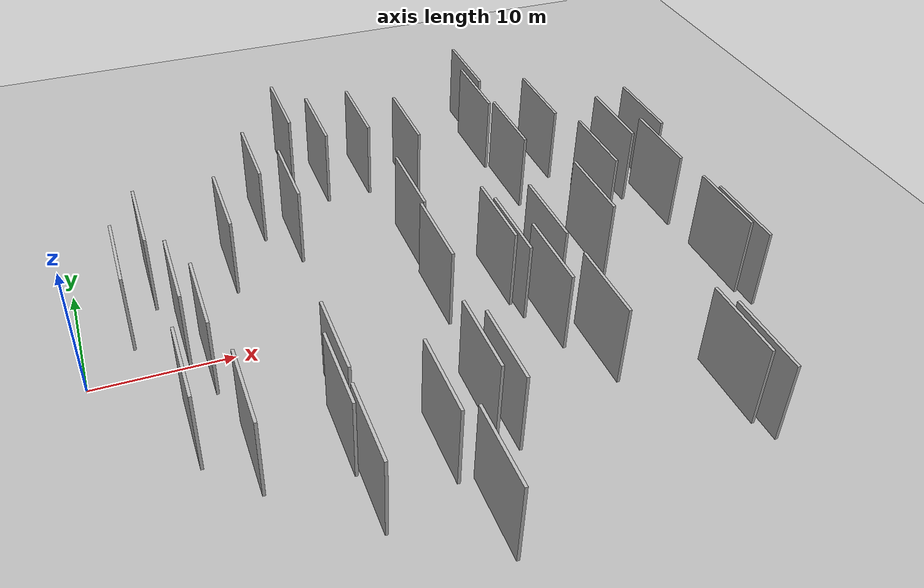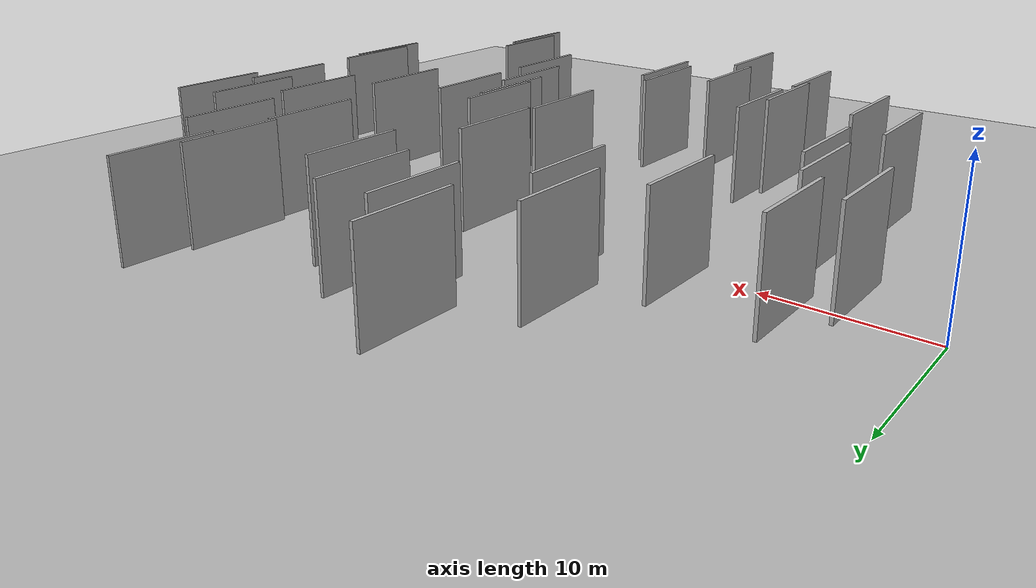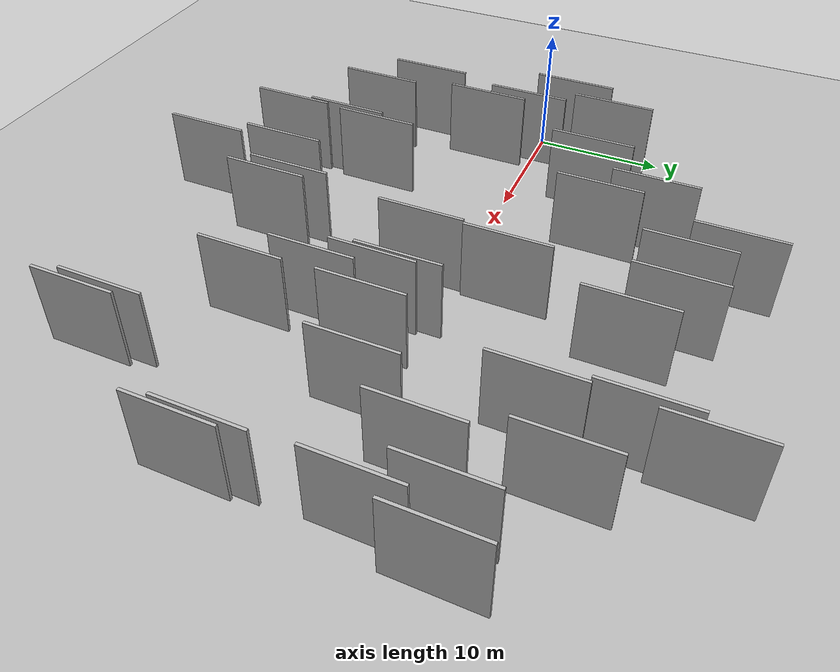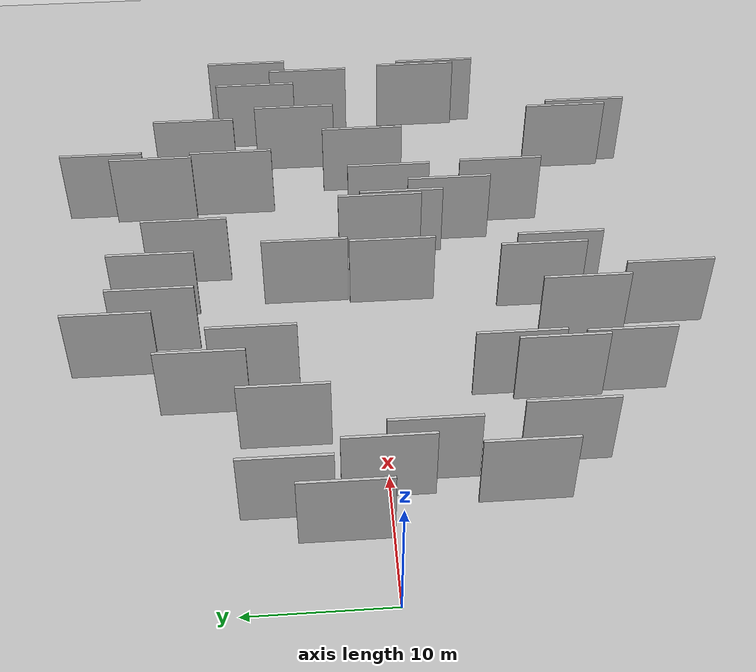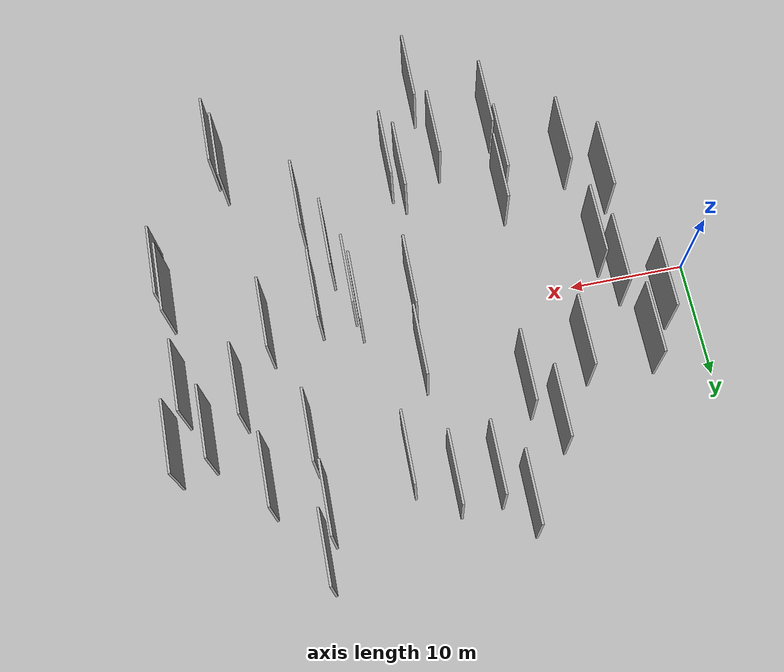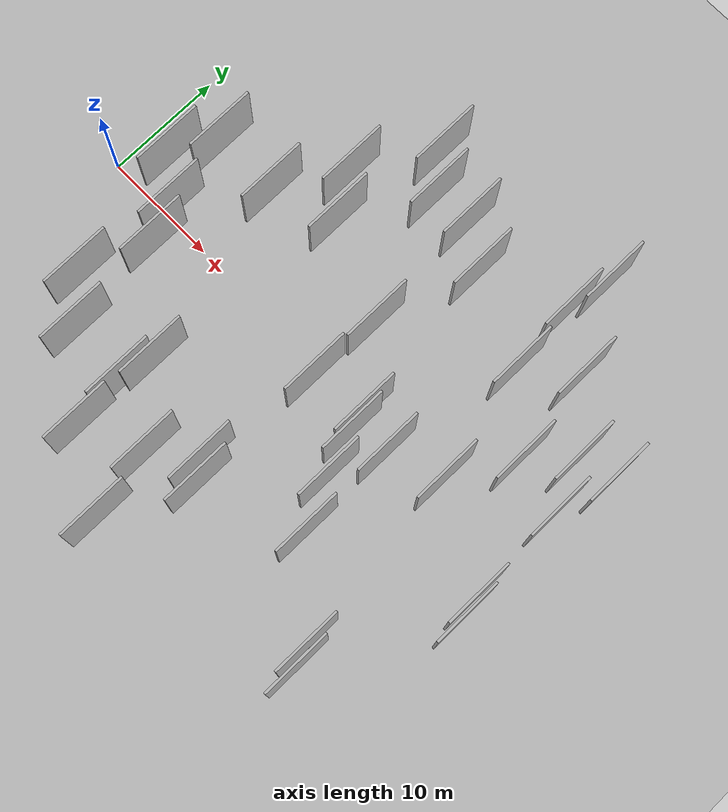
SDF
<?xml version="1.0" encoding="utf-8"?>

<sdf version="1.6">

   <world name="default">

      <gui fullscreen="0">

         <camera name="user_camera">

            <pose>-15 0 4.57585 0 0 0</pose>

            <view_controller>orbit</view_controller>

         </camera>

      </gui>

      <scene>

         <sky>

           <clouds>

             <speed>12</speed>

           </clouds>

         </sky>

         <ambient>0.4 0.4 0.4 1</ambient>

         <background>0.7 0.7 0.7 1</background>

         <shadows>1</shadows>

      </scene>

      <gravity>0 0 -9.8066</gravity>

      <magnetic_field>6e-06 2.3e-05 -4.2e-05</magnetic_field>

      <physics default="0" name="default_physics" type="ode">

         <ode>

            <solver>

               <type>quick</type>

               <iters>10</iters>

               <sor>1.0</sor>

               <use_dynamic_moi_rescaling>0</use_dynamic_moi_rescaling>

            </solver>

            <constraints>

               <cfm>0</cfm>

               <erp>0.2</erp>

               <contact_max_correcting_vel>100</contact_max_correcting_vel>

               <contact_surface_layer>0.001</contact_surface_layer>

            </constraints>

         </ode>

         <max_step_size>0.004</max_step_size>

         <real_time_factor>1</real_time_factor>

         <real_time_update_rate>250</real_time_update_rate>

      </physics>

      <light name="sun" type="directional">

         <cast_shadows>1</cast_shadows>

         <pose>0 0 10 0 0 0</pose>

         <diffuse>0.8 0.8 0.8 1</diffuse>

         <specular>0.2 0.2 0.2 1</specular>

         <attenuation>

            <range>1000</range>

            <constant>0.9</constant>

            <linear>0.01</linear>

            <quadratic>0.001</quadratic>

         </attenuation>

         <direction>-0.5 0.1 -0.9</direction>

      </light>

      <include>

         <name>ground_plane_1</name>

         <uri>model://HANNAS_ground_plane</uri>

         <pose>0 0 0  0 0 0</pose>

      </include>

      <include>

         <name>ground_plane_2</name>

         <uri>model://HANNAS_ground_plane</uri>

         <pose>100 0 0  0 0 0</pose>

      </include>

      <model name="HANNAS_wall_1">

         <static>1</static>

         <pose frame="">14.3937 11.9667 2.5 0.000000 0.000000 1.570796</pose>

         <link name="link">

            <pose frame="">0 0 3.00 0 0 0</pose>

            <collision name="collision">

               <geometry>

                  <box>

                     <size>6.00 0.2 6.00</size>

                  </box>

               </geometry>

               <max_contacts>10</max_contacts>

               <surface>

                  <contact>

                     <ode/>

                  </contact>

                  <bounce/>

                  <friction>

                     <torsional>

                        <ode/>

                     </torsional>

                     <ode/>

                  </friction>

               </surface>

            </collision>

            <visual name="visual">

               <cast_shadows>0</cast_shadows>

               <geometry>

                  <box>

                     <size>6.00 0.2 6.00</size>

                  </box>

               </geometry>

               <material>

                  <script>

                     <uri>model://HANNAS_wall/materials/scripts</uri>

                     <uri>model://HANNAS_wall/materials/textures</uri>

                     <name>vrc/HANNAS_wall</name>

                  </script>

               </material>

            </visual>

            <self_collide>0</self_collide>

            <enable_wind>0</enable_wind>

            <kinematic>0</kinematic>

         </link>

      </model>

      <model name="HANNAS_wall_2">

         <static>1</static>

         <pose frame="">16.3919 8.6113 2.5 0.000000 0.000000 1.570796</pose>

         <link name="link">

            <pose frame="">0 0 3.00 0 0 0</pose>

            <collision name="collision">

               <geometry>

                  <box>

                     <size>6.00 0.2 6.00</size>

                  </box>

               </geometry>

               <max_contacts>10</max_contacts>

               <surface>

                  <contact>

                     <ode/>

                  </contact>

                  <bounce/>

                  <friction>

                     <torsional>

                        <ode/>

                     </torsional>

                     <ode/>

                  </friction>

               </surface>

            </collision>

            <visual name="visual">

               <cast_shadows>0</cast_shadows>

               <geometry>

                  <box>

                     <size>6.00 0.2 6.00</size>

                  </box>

               </geometry>

               <material>

                  <script>

                     <uri>model://HANNAS_wall/materials/scripts</uri>

                     <uri>model://HANNAS_wall/materials/textures</uri>

                     <name>vrc/HANNAS_wall</name>

                  </script>

               </material>

            </visual>

            <self_collide>0</self_collide>

            <enable_wind>0</enable_wind>

            <kinematic>0</kinematic>

         </link>

      </model>

      <model name="HANNAS_wall_3">

         <static>1</static>

         <pose frame="">42.2701 8.1424 2.5 0.000000 0.000000 1.570796</pose>

         <link name="link">

            <pose frame="">0 0 3.00 0 0 0</pose>

            <collision name="collision">

               <geometry>

                  <box>

                     <size>6.00 0.2 6.00</size>

                  </box>

               </geometry>

               <max_contacts>10</max_contacts>

               <surface>

                  <contact>

                     <ode/>

                  </contact>

                  <bounce/>

                  <friction>

                     <torsional>

                        <ode/>

                     </torsional>

                     <ode/>

                  </friction>

               </surface>

            </collision>

            <visual name="visual">

               <cast_shadows>0</cast_shadows>

               <geometry>

                  <box>

                     <size>6.00 0.2 6.00</size>

                  </box>

               </geometry>

               <material>

                  <script>

                     <uri>model://HANNAS_wall/materials/scripts</uri>

                     <uri>model://HANNAS_wall/materials/textures</uri>

                     <name>vrc/HANNAS_wall</name>

                  </script>

               </material>

            </visual>

            <self_collide>0</self_collide>

            <enable_wind>0</enable_wind>

            <kinematic>0</kinematic>

         </link>

      </model>

      <model name="HANNAS_wall_4">

         <static>1</static>

         <pose frame="">6.7363 0.3135 2.5 0.000000 0.000000 1.570796</pose>

         <link name="link">

            <pose frame="">0 0 3.00 0 0 0</pose>

            <collision name="collision">

               <geometry>

                  <box>

                     <size>6.00 0.2 6.00</size>

                  </box>

               </geometry>

               <max_contacts>10</max_contacts>

               <surface>

                  <contact>

                     <ode/>

                  </contact>

                  <bounce/>

                  <friction>

                     <torsional>

                        <ode/>

                     </torsional>

                     <ode/>

                  </friction>

               </surface>

            </collision>

            <visual name="visual">

               <cast_shadows>0</cast_shadows>

               <geometry>

                  <box>

                     <size>6.00 0.2 6.00</size>

                  </box>

               </geometry>

               <material>

                  <script>

                     <uri>model://HANNAS_wall/materials/scripts</uri>

                     <uri>model://HANNAS_wall/materials/textures</uri>

                     <name>vrc/HANNAS_wall</name>

                  </script>

               </material>

            </visual>

            <self_collide>0</self_collide>

            <enable_wind>0</enable_wind>

            <kinematic>0</kinematic>

         </link>

      </model>

      <model name="HANNAS_wall_5">

         <static>1</static>

         <pose frame="">36.3758 0.1300 2.5 0.000000 0.000000 1.570796</pose>

         <link name="link">

            <pose frame="">0 0 3.00 0 0 0</pose>

            <collision name="collision">

               <geometry>

                  <box>

                     <size>6.00 0.2 6.00</size>

                  </box>

               </geometry>

               <max_contacts>10</max_contacts>

               <surface>

                  <contact>

                     <ode/>

                  </contact>

                  <bounce/>

                  <friction>

                     <torsional>

                        <ode/>

                     </torsional>

                     <ode/>

                  </friction>

               </surface>

            </collision>

            <visual name="visual">

               <cast_shadows>0</cast_shadows>

               <geometry>

                  <box>

                     <size>6.00 0.2 6.00</size>

                  </box>

               </geometry>

               <material>

                  <script>

                     <uri>model://HANNAS_wall/materials/scripts</uri>

                     <uri>model://HANNAS_wall/materials/textures</uri>

                     <name>vrc/HANNAS_wall</name>

                  </script>

               </material>

            </visual>

            <self_collide>0</self_collide>

            <enable_wind>0</enable_wind>

            <kinematic>0</kinematic>

         </link>

      </model>

      <model name="HANNAS_wall_6">

         <static>1</static>

         <pose frame="">5.5170 6.7198 2.5 0.000000 0.000000 1.570796</pose>

         <link name="link">

            <pose frame="">0 0 3.00 0 0 0</pose>

            <collision name="collision">

               <geometry>

                  <box>

                     <size>6.00 0.2 6.00</size>

                  </box>

               </geometry>

               <max_contacts>10</max_contacts>

               <surface>

                  <contact>

                     <ode/>

                  </contact>

                  <bounce/>

                  <friction>

                     <torsional>

                        <ode/>

                     </torsional>

                     <ode/>

                  </friction>

               </surface>

            </collision>

            <visual name="visual">

               <cast_shadows>0</cast_shadows>

               <geometry>

                  <box>

                     <size>6.00 0.2 6.00</size>

                  </box>

               </geometry>

               <material>

                  <script>

                     <uri>model://HANNAS_wall/materials/scripts</uri>

                     <uri>model://HANNAS_wall/materials/textures</uri>

                     <name>vrc/HANNAS_wall</name>

                  </script>

               </material>

            </visual>

            <self_collide>0</self_collide>

            <enable_wind>0</enable_wind>

            <kinematic>0</kinematic>

         </link>

      </model>

      <model name="HANNAS_wall_7">

         <static>1</static>

         <pose frame="">20.6162 -19.9581 2.5 0.000000 0.000000 1.570796</pose>

         <link name="link">

            <pose frame="">0 0 3.00 0 0 0</pose>

            <collision name="collision">

               <geometry>

                  <box>

                     <size>6.00 0.2 6.00</size>

                  </box>

               </geometry>

               <max_contacts>10</max_contacts>

               <surface>

                  <contact>

                     <ode/>

                  </contact>

                  <bounce/>

                  <friction>

                     <torsional>

                        <ode/>

                     </torsional>

                     <ode/>

                  </friction>

               </surface>

            </collision>

            <visual name="visual">

               <cast_shadows>0</cast_shadows>

               <geometry>

                  <box>

                     <size>6.00 0.2 6.00</size>

                  </box>

               </geometry>

               <material>

                  <script>

                     <uri>model://HANNAS_wall/materials/scripts</uri>

                     <uri>model://HANNAS_wall/materials/textures</uri>

                     <name>vrc/HANNAS_wall</name>

                  </script>

               </material>

            </visual>

            <self_collide>0</self_collide>

            <enable_wind>0</enable_wind>

            <kinematic>0</kinematic>

         </link>

      </model>

      <model name="HANNAS_wall_8">

         <static>1</static>

         <pose frame="">31.9940 -1.5447 2.5 0.000000 0.000000 1.570796</pose>

         <link name="link">

            <pose frame="">0 0 3.00 0 0 0</pose>

            <collision name="collision">

               <geometry>

                  <box>

                     <size>6.00 0.2 6.00</size>

                  </box>

               </geometry>

               <max_contacts>10</max_contacts>

               <surface>

                  <contact>

                     <ode/>

                  </contact>

                  <bounce/>

                  <friction>

                     <torsional>

                        <ode/>

                     </torsional>

                     <ode/>

                  </friction>

               </surface>

            </collision>

            <visual name="visual">

               <cast_shadows>0</cast_shadows>

               <geometry>

                  <box>

                     <size>6.00 0.2 6.00</size>

                  </box>

               </geometry>

               <material>

                  <script>

                     <uri>model://HANNAS_wall/materials/scripts</uri>

                     <uri>model://HANNAS_wall/materials/textures</uri>

                     <name>vrc/HANNAS_wall</name>

                  </script>

               </material>

            </visual>

            <self_collide>0</self_collide>

            <enable_wind>0</enable_wind>

            <kinematic>0</kinematic>

         </link>

      </model>

      <model name="HANNAS_wall_9">

         <static>1</static>

         <pose frame="">44.1794 -4.5368 2.5 0.000000 0.000000 1.570796</pose>

         <link name="link">

            <pose frame="">0 0 3.00 0 0 0</pose>

            <collision name="collision">

               <geometry>

                  <box>

                     <size>6.00 0.2 6.00</size>

                  </box>

               </geometry>

               <max_contacts>10</max_contacts>

               <surface>

                  <contact>

                     <ode/>

                  </contact>

                  <bounce/>

                  <friction>

                     <torsional>

                        <ode/>

                     </torsional>

                     <ode/>

                  </friction>

               </surface>

            </collision>

            <visual name="visual">

               <cast_shadows>0</cast_shadows>

               <geometry>

                  <box>

                     <size>6.00 0.2 6.00</size>

                  </box>

               </geometry>

               <material>

                  <script>

                     <uri>model://HANNAS_wall/materials/scripts</uri>

                     <uri>model://HANNAS_wall/materials/textures</uri>

                     <name>vrc/HANNAS_wall</name>

                  </script>

               </material>

            </visual>

            <self_collide>0</self_collide>

            <enable_wind>0</enable_wind>

            <kinematic>0</kinematic>

         </link>

      </model>

      <model name="HANNAS_wall_10">

         <static>1</static>

         <pose frame="">14.1876 -11.6768 2.5 0.000000 0.000000 1.570796</pose>

         <link name="link">

            <pose frame="">0 0 3.00 0 0 0</pose>

            <collision name="collision">

               <geometry>

                  <box>

                     <size>6.00 0.2 6.00</size>

                  </box>

               </geometry>

               <max_contacts>10</max_contacts>

               <surface>

                  <contact>

                     <ode/>

                  </contact>

                  <bounce/>

                  <friction>

                     <torsional>

                        <ode/>

                     </torsional>

                     <ode/>

                  </friction>

               </surface>

            </collision>

            <visual name="visual">

               <cast_shadows>0</cast_shadows>

               <geometry>

                  <box>

                     <size>6.00 0.2 6.00</size>

                  </box>

               </geometry>

               <material>

                  <script>

                     <uri>model://HANNAS_wall/materials/scripts</uri>

                     <uri>model://HANNAS_wall/materials/textures</uri>

                     <name>vrc/HANNAS_wall</name>

                  </script>

               </material>

            </visual>

            <self_collide>0</self_collide>

            <enable_wind>0</enable_wind>

            <kinematic>0</kinematic>

         </link>

      </model>

      <model name="HANNAS_wall_11">

         <static>1</static>

         <pose frame="">30.2900 -5.8264 2.5 0.000000 0.000000 1.570796</pose>

         <link name="link">

            <pose frame="">0 0 3.00 0 0 0</pose>

            <collision name="collision">

               <geometry>

                  <box>

                     <size>6.00 0.2 6.00</size>

                  </box>

               </geometry>

               <max_contacts>10</max_contacts>

               <surface>

                  <contact>

                     <ode/>

                  </contact>

                  <bounce/>

                  <friction>

                     <torsional>

                        <ode/>

                     </torsional>

                     <ode/>

                  </friction>

               </surface>

            </collision>

            <visual name="visual">

               <cast_shadows>0</cast_shadows>

               <geometry>

                  <box>

                     <size>6.00 0.2 6.00</size>

                  </box>

               </geometry>

               <material>

                  <script>

                     <uri>model://HANNAS_wall/materials/scripts</uri>

                     <uri>model://HANNAS_wall/materials/textures</uri>

                     <name>vrc/HANNAS_wall</name>

                  </script>

               </material>

            </visual>

            <self_collide>0</self_collide>

            <enable_wind>0</enable_wind>

            <kinematic>0</kinematic>

         </link>

      </model>

      <model name="HANNAS_wall_12">

         <static>1</static>

         <pose frame="">8.8209 -11.3309 2.5 0.000000 0.000000 1.570796</pose>

         <link name="link">

            <pose frame="">0 0 3.00 0 0 0</pose>

            <collision name="collision">

               <geometry>

                  <box>

                     <size>6.00 0.2 6.00</size>

                  </box>

               </geometry>

               <max_contacts>10</max_contacts>

               <surface>

                  <contact>

                     <ode/>

                  </contact>

                  <bounce/>

                  <friction>

                     <torsional>

                        <ode/>

                     </torsional>

                     <ode/>

                  </friction>

               </surface>

            </collision>

            <visual name="visual">

               <cast_shadows>0</cast_shadows>

               <geometry>

                  <box>

                     <size>6.00 0.2 6.00</size>

                  </box>

               </geometry>

               <material>

                  <script>

                     <uri>model://HANNAS_wall/materials/scripts</uri>

                     <uri>model://HANNAS_wall/materials/textures</uri>

                     <name>vrc/HANNAS_wall</name>

                  </script>

               </material>

            </visual>

            <self_collide>0</self_collide>

            <enable_wind>0</enable_wind>

            <kinematic>0</kinematic>

         </link>

      </model>

      <model name="HANNAS_wall_13">

         <static>1</static>

         <pose frame="">29.0620 -2.2479 2.5 0.000000 0.000000 1.570796</pose>

         <link name="link">

            <pose frame="">0 0 3.00 0 0 0</pose>

            <collision name="collision">

               <geometry>

                  <box>

                     <size>6.00 0.2 6.00</size>

                  </box>

               </geometry>

               <max_contacts>10</max_contacts>

               <surface>

                  <contact>

                     <ode/>

                  </contact>

                  <bounce/>

                  <friction>

                     <torsional>

                        <ode/>

                     </torsional>

                     <ode/>

                  </friction>

               </surface>

            </collision>

            <visual name="visual">

               <cast_shadows>0</cast_shadows>

               <geometry>

                  <box>

                     <size>6.00 0.2 6.00</size>

                  </box>

               </geometry>

               <material>

                  <script>

                     <uri>model://HANNAS_wall/materials/scripts</uri>

                     <uri>model://HANNAS_wall/materials/textures</uri>

                     <name>vrc/HANNAS_wall</name>

                  </script>

               </material>

            </visual>

            <self_collide>0</self_collide>

            <enable_wind>0</enable_wind>

            <kinematic>0</kinematic>

         </link>

      </model>

      <model name="HANNAS_wall_14">

         <static>1</static>

         <pose frame="">23.6584 15.4798 2.5 0.000000 0.000000 1.570796</pose>

         <link name="link">

            <pose frame="">0 0 3.00 0 0 0</pose>

            <collision name="collision">

               <geometry>

                  <box>

                     <size>6.00 0.2 6.00</size>

                  </box>

               </geometry>

               <max_contacts>10</max_contacts>

               <surface>

                  <contact>

                     <ode/>

                  </contact>

                  <bounce/>

                  <friction>

                     <torsional>

                        <ode/>

                     </torsional>

                     <ode/>

                  </friction>

               </surface>

            </collision>

            <visual name="visual">

               <cast_shadows>0</cast_shadows>

               <geometry>

                  <box>

                     <size>6.00 0.2 6.00</size>

                  </box>

               </geometry>

               <material>

                  <script>

                     <uri>model://HANNAS_wall/materials/scripts</uri>

                     <uri>model://HANNAS_wall/materials/textures</uri>

                     <name>vrc/HANNAS_wall</name>

                  </script>

               </material>

            </visual>

            <self_collide>0</self_collide>

            <enable_wind>0</enable_wind>

            <kinematic>0</kinematic>

         </link>

      </model>

      <model name="HANNAS_wall_15">

         <static>1</static>

         <pose frame="">3.5418 3.1397 2.5 0.000000 0.000000 1.570796</pose>

         <link name="link">

            <pose frame="">0 0 3.00 0 0 0</pose>

            <collision name="collision">

               <geometry>

                  <box>

                     <size>6.00 0.2 6.00</size>

                  </box>

               </geometry>

               <max_contacts>10</max_contacts>

               <surface>

                  <contact>

                     <ode/>

                  </contact>

                  <bounce/>

                  <friction>

                     <torsional>

                        <ode/>

                     </torsional>

                     <ode/>

                  </friction>

               </surface>

            </collision>

            <visual name="visual">

               <cast_shadows>0</cast_shadows>

               <geometry>

                  <box>

                     <size>6.00 0.2 6.00</size>

                  </box>

               </geometry>

               <material>

                  <script>

                     <uri>model://HANNAS_wall/materials/scripts</uri>

                     <uri>model://HANNAS_wall/materials/textures</uri>

                     <name>vrc/HANNAS_wall</name>

                  </script>

               </material>

            </visual>

            <self_collide>0</self_collide>

            <enable_wind>0</enable_wind>

            <kinematic>0</kinematic>

         </link>

      </model>

      <model name="HANNAS_wall_16">

         <static>1</static>

         <pose frame="">5.8569 -8.3021 2.5 0.000000 0.000000 1.570796</pose>

         <link name="link">

            <pose frame="">0 0 3.00 0 0 0</pose>

            <collision name="collision">

               <geometry>

                  <box>

                     <size>6.00 0.2 6.00</size>

                  </box>

               </geometry>

               <max_contacts>10</max_contacts>

               <surface>

                  <contact>

                     <ode/>

                  </contact>

                  <bounce/>

                  <friction>

                     <torsional>

                        <ode/>

                     </torsional>

                     <ode/>

                  </friction>

               </surface>

            </collision>

            <visual name="visual">

               <cast_shadows>0</cast_shadows>

               <geometry>

                  <box>

                     <size>6.00 0.2 6.00</size>

                  </box>

               </geometry>

               <material>

                  <script>

                     <uri>model://HANNAS_wall/materials/scripts</uri>

                     <uri>model://HANNAS_wall/materials/textures</uri>

                     <name>vrc/HANNAS_wall</name>

                  </script>

               </material>

            </visual>

            <self_collide>0</self_collide>

            <enable_wind>0</enable_wind>

            <kinematic>0</kinematic>

         </link>

      </model>

      <model name="HANNAS_wall_17">

         <static>1</static>

         <pose frame="">23.9414 -12.9512 2.5 0.000000 0.000000 1.570796</pose>

         <link name="link">

            <pose frame="">0 0 3.00 0 0 0</pose>

            <collision name="collision">

               <geometry>

                  <box>

                     <size>6.00 0.2 6.00</size>

                  </box>

               </geometry>

               <max_contacts>10</max_contacts>

               <surface>

                  <contact>

                     <ode/>

                  </contact>

                  <bounce/>

                  <friction>

                     <torsional>

                        <ode/>

                     </torsional>

                     <ode/>

                  </friction>

               </surface>

            </collision>

            <visual name="visual">

               <cast_shadows>0</cast_shadows>

               <geometry>

                  <box>

                     <size>6.00 0.2 6.00</size>

                  </box>

               </geometry>

               <material>

                  <script>

                     <uri>model://HANNAS_wall/materials/scripts</uri>

                     <uri>model://HANNAS_wall/materials/textures</uri>

                     <name>vrc/HANNAS_wall</name>

                  </script>

               </material>

            </visual>

            <self_collide>0</self_collide>

            <enable_wind>0</enable_wind>

            <kinematic>0</kinematic>

         </link>

      </model>

      <model name="HANNAS_wall_18">

         <static>1</static>

         <pose frame="">24.3303 4.8738 2.5 0.000000 0.000000 1.570796</pose>

         <link name="link">

            <pose frame="">0 0 3.00 0 0 0</pose>

            <collision name="collision">

               <geometry>

                  <box>

                     <size>6.00 0.2 6.00</size>

                  </box>

               </geometry>

               <max_contacts>10</max_contacts>

               <surface>

                  <contact>

                     <ode/>

                  </contact>

                  <bounce/>

                  <friction>

                     <torsional>

                        <ode/>

                     </torsional>

                     <ode/>

                  </friction>

               </surface>

            </collision>

            <visual name="visual">

               <cast_shadows>0</cast_shadows>

               <geometry>

                  <box>

                     <size>6.00 0.2 6.00</size>

                  </box>

               </geometry>

               <material>

                  <script>

                     <uri>model://HANNAS_wall/materials/scripts</uri>

                     <uri>model://HANNAS_wall/materials/textures</uri>

                     <name>vrc/HANNAS_wall</name>

                  </script>

               </material>

            </visual>

            <self_collide>0</self_collide>

            <enable_wind>0</enable_wind>

            <kinematic>0</kinematic>

         </link>

      </model>

      <model name="HANNAS_wall_19">

         <static>1</static>

         <pose frame="">34.4750 19.5142 2.5 0.000000 0.000000 1.570796</pose>

         <link name="link">

            <pose frame="">0 0 3.00 0 0 0</pose>

            <collision name="collision">

               <geometry>

                  <box>

                     <size>6.00 0.2 6.00</size>

                  </box>

               </geometry>

               <max_contacts>10</max_contacts>

               <surface>

                  <contact>

                     <ode/>

                  </contact>

                  <bounce/>

                  <friction>

                     <torsional>

                        <ode/>

                     </torsional>

                     <ode/>

                  </friction>

               </surface>

            </collision>

            <visual name="visual">

               <cast_shadows>0</cast_shadows>

               <geometry>

                  <box>

                     <size>6.00 0.2 6.00</size>

                  </box>

               </geometry>

               <material>

                  <script>

                     <uri>model://HANNAS_wall/materials/scripts</uri>

                     <uri>model://HANNAS_wall/materials/textures</uri>

                     <name>vrc/HANNAS_wall</name>

                  </script>

               </material>

            </visual>

            <self_collide>0</self_collide>

            <enable_wind>0</enable_wind>

            <kinematic>0</kinematic>

         </link>

      </model>

      <model name="HANNAS_wall_20">

         <static>1</static>

         <pose frame="">20.2878 15.3825 2.5 0.000000 0.000000 1.570796</pose>

         <link name="link">

            <pose frame="">0 0 3.00 0 0 0</pose>

            <collision name="collision">

               <geometry>

                  <box>

                     <size>6.00 0.2 6.00</size>

                  </box>

               </geometry>

               <max_contacts>10</max_contacts>

               <surface>

                  <contact>

                     <ode/>

                  </contact>

                  <bounce/>

                  <friction>

                     <torsional>

                        <ode/>

                     </torsional>

                     <ode/>

                  </friction>

               </surface>

            </collision>

            <visual name="visual">

               <cast_shadows>0</cast_shadows>

               <geometry>

                  <box>

                     <size>6.00 0.2 6.00</size>

                  </box>

               </geometry>

               <material>

                  <script>

                     <uri>model://HANNAS_wall/materials/scripts</uri>

                     <uri>model://HANNAS_wall/materials/textures</uri>

                     <name>vrc/HANNAS_wall</name>

                  </script>

               </material>

            </visual>

            <self_collide>0</self_collide>

            <enable_wind>0</enable_wind>

            <kinematic>0</kinematic>

         </link>

      </model>

      <model name="HANNAS_wall_21">

         <static>1</static>

         <pose frame="">11.1856 6.6719 2.5 0.000000 0.000000 1.570796</pose>

         <link name="link">

            <pose frame="">0 0 3.00 0 0 0</pose>

            <collision name="collision">

               <geometry>

                  <box>

                     <size>6.00 0.2 6.00</size>

                  </box>

               </geometry>

               <max_contacts>10</max_contacts>

               <surface>

                  <contact>

                     <ode/>

                  </contact>

                  <bounce/>

                  <friction>

                     <torsional>

                        <ode/>

                     </torsional>

                     <ode/>

                  </friction>

               </surface>

            </collision>

            <visual name="visual">

               <cast_shadows>0</cast_shadows>

               <geometry>

                  <box>

                     <size>6.00 0.2 6.00</size>

                  </box>

               </geometry>

               <material>

                  <script>

                     <uri>model://HANNAS_wall/materials/scripts</uri>

                     <uri>model://HANNAS_wall/materials/textures</uri>

                     <name>vrc/HANNAS_wall</name>

                  </script>

               </material>

            </visual>

            <self_collide>0</self_collide>

            <enable_wind>0</enable_wind>

            <kinematic>0</kinematic>

         </link>

      </model>

      <model name="HANNAS_wall_22">

         <static>1</static>

         <pose frame="">24.0437 -1.2047 2.5 0.000000 0.000000 1.570796</pose>

         <link name="link">

            <pose frame="">0 0 3.00 0 0 0</pose>

            <collision name="collision">

               <geometry>

                  <box>

                     <size>6.00 0.2 6.00</size>

                  </box>

               </geometry>

               <max_contacts>10</max_contacts>

               <surface>

                  <contact>

                     <ode/>

                  </contact>

                  <bounce/>

                  <friction>

                     <torsional>

                        <ode/>

                     </torsional>

                     <ode/>

                  </friction>

               </surface>

            </collision>

            <visual name="visual">

               <cast_shadows>0</cast_shadows>

               <geometry>

                  <box>

                     <size>6.00 0.2 6.00</size>

                  </box>

               </geometry>

               <material>

                  <script>

                     <uri>model://HANNAS_wall/materials/scripts</uri>

                     <uri>model://HANNAS_wall/materials/textures</uri>

                     <name>vrc/HANNAS_wall</name>

                  </script>

               </material>

            </visual>

            <self_collide>0</self_collide>

            <enable_wind>0</enable_wind>

            <kinematic>0</kinematic>

         </link>

      </model>

      <model name="HANNAS_wall_23">

         <static>1</static>

         <pose frame="">19.5489 -14.1023 2.5 0.000000 0.000000 1.570796</pose>

         <link name="link">

            <pose frame="">0 0 3.00 0 0 0</pose>

            <collision name="collision">

               <geometry>

                  <box>

                     <size>6.00 0.2 6.00</size>

                  </box>

               </geometry>

               <max_contacts>10</max_contacts>

               <surface>

                  <contact>

                     <ode/>

                  </contact>

                  <bounce/>

                  <friction>

                     <torsional>

                        <ode/>

                     </torsional>

                     <ode/>

                  </friction>

               </surface>

            </collision>

            <visual name="visual">

               <cast_shadows>0</cast_shadows>

               <geometry>

                  <box>

                     <size>6.00 0.2 6.00</size>

                  </box>

               </geometry>

               <material>

                  <script>

                     <uri>model://HANNAS_wall/materials/scripts</uri>

                     <uri>model://HANNAS_wall/materials/textures</uri>

                     <name>vrc/HANNAS_wall</name>

                  </script>

               </material>

            </visual>

            <self_collide>0</self_collide>

            <enable_wind>0</enable_wind>

            <kinematic>0</kinematic>

         </link>

      </model>

      <model name="HANNAS_wall_24">

         <static>1</static>

         <pose frame="">38.1406 -15.5876 2.5 0.000000 0.000000 1.570796</pose>

         <link name="link">

            <pose frame="">0 0 3.00 0 0 0</pose>

            <collision name="collision">

               <geometry>

                  <box>

                     <size>6.00 0.2 6.00</size>

                  </box>

               </geometry>

               <max_contacts>10</max_contacts>

               <surface>

                  <contact>

                     <ode/>

                  </contact>

                  <bounce/>

                  <friction>

                     <torsional>

                        <ode/>

                     </torsional>

                     <ode/>

                  </friction>

               </surface>

            </collision>

            <visual name="visual">

               <cast_shadows>0</cast_shadows>

               <geometry>

                  <box>

                     <size>6.00 0.2 6.00</size>

                  </box>

               </geometry>

               <material>

                  <script>

                     <uri>model://HANNAS_wall/materials/scripts</uri>

                     <uri>model://HANNAS_wall/materials/textures</uri>

                     <name>vrc/HANNAS_wall</name>

                  </script>

               </material>

            </visual>

            <self_collide>0</self_collide>

            <enable_wind>0</enable_wind>

            <kinematic>0</kinematic>

         </link>

      </model>

      <model name="HANNAS_wall_25">

         <static>1</static>

         <pose frame="">38.0680 12.8161 2.5 0.000000 0.000000 1.570796</pose>

         <link name="link">

            <pose frame="">0 0 3.00 0 0 0</pose>

            <collision name="collision">

               <geometry>

                  <box>

                     <size>6.00 0.2 6.00</size>

                  </box>

               </geometry>

               <max_contacts>10</max_contacts>

               <surface>

                  <contact>

                     <ode/>

                  </contact>

                  <bounce/>

                  <friction>

                     <torsional>

                        <ode/>

                     </torsional>

                     <ode/>

                  </friction>

               </surface>

            </collision>

            <visual name="visual">

               <cast_shadows>0</cast_shadows>

               <geometry>

                  <box>

                     <size>6.00 0.2 6.00</size>

                  </box>

               </geometry>

               <material>

                  <script>

                     <uri>model://HANNAS_wall/materials/scripts</uri>

                     <uri>model://HANNAS_wall/materials/textures</uri>

                     <name>vrc/HANNAS_wall</name>

                  </script>

               </material>

            </visual>

            <self_collide>0</self_collide>

            <enable_wind>0</enable_wind>

            <kinematic>0</kinematic>

         </link>

      </model>

      <model name="HANNAS_wall_26">

         <static>1</static>

         <pose frame="">14.5330 -16.1278 2.5 0.000000 0.000000 1.570796</pose>

         <link name="link">

            <pose frame="">0 0 3.00 0 0 0</pose>

            <collision name="collision">

               <geometry>

                  <box>

                     <size>6.00 0.2 6.00</size>

                  </box>

               </geometry>

               <max_contacts>10</max_contacts>

               <surface>

                  <contact>

                     <ode/>

                  </contact>

                  <bounce/>

                  <friction>

                     <torsional>

                        <ode/>

                     </torsional>

                     <ode/>

                  </friction>

               </surface>

            </collision>

            <visual name="visual">

               <cast_shadows>0</cast_shadows>

               <geometry>

                  <box>

                     <size>6.00 0.2 6.00</size>

                  </box>

               </geometry>

               <material>

                  <script>

                     <uri>model://HANNAS_wall/materials/scripts</uri>

                     <uri>model://HANNAS_wall/materials/textures</uri>

                     <name>vrc/HANNAS_wall</name>

                  </script>

               </material>

            </visual>

            <self_collide>0</self_collide>

            <enable_wind>0</enable_wind>

            <kinematic>0</kinematic>

         </link>

      </model>

      <model name="HANNAS_wall_27">

         <static>1</static>

         <pose frame="">26.9502 13.2616 2.5 0.000000 0.000000 1.570796</pose>

         <link name="link">

            <pose frame="">0 0 3.00 0 0 0</pose>

            <collision name="collision">

               <geometry>

                  <box>

                     <size>6.00 0.2 6.00</size>

                  </box>

               </geometry>

               <max_contacts>10</max_contacts>

               <surface>

                  <contact>

                     <ode/>

                  </contact>

                  <bounce/>

                  <friction>

                     <torsional>

                        <ode/>

                     </torsional>

                     <ode/>

                  </friction>

               </surface>

            </collision>

            <visual name="visual">

               <cast_shadows>0</cast_shadows>

               <geometry>

                  <box>

                     <size>6.00 0.2 6.00</size>

                  </box>

               </geometry>

               <material>

                  <script>

                     <uri>model://HANNAS_wall/materials/scripts</uri>

                     <uri>model://HANNAS_wall/materials/textures</uri>

                     <name>vrc/HANNAS_wall</name>

                  </script>

               </material>

            </visual>

            <self_collide>0</self_collide>

            <enable_wind>0</enable_wind>

            <kinematic>0</kinematic>

         </link>

      </model>

      <model name="HANNAS_wall_28">

         <static>1</static>

         <pose frame="">32.1097 -9.7928 2.5 0.000000 0.000000 1.570796</pose>

         <link name="link">

            <pose frame="">0 0 3.00 0 0 0</pose>

            <collision name="collision">

               <geometry>

                  <box>

                     <size>6.00 0.2 6.00</size>

                  </box>

               </geometry>

               <max_contacts>10</max_contacts>

               <surface>

                  <contact>

                     <ode/>

                  </contact>

                  <bounce/>

                  <friction>

                     <torsional>

                        <ode/>

                     </torsional>

                     <ode/>

                  </friction>

               </surface>

            </collision>

            <visual name="visual">

               <cast_shadows>0</cast_shadows>

               <geometry>

                  <box>

                     <size>6.00 0.2 6.00</size>

                  </box>

               </geometry>

               <material>

                  <script>

                     <uri>model://HANNAS_wall/materials/scripts</uri>

                     <uri>model://HANNAS_wall/materials/textures</uri>

                     <name>vrc/HANNAS_wall</name>

                  </script>

               </material>

            </visual>

            <self_collide>0</self_collide>

            <enable_wind>0</enable_wind>

            <kinematic>0</kinematic>

         </link>

      </model>

      <model name="HANNAS_wall_29">

         <static>1</static>

         <pose frame="">14.7586 -8.9279 2.5 0.000000 0.000000 1.570796</pose>

         <link name="link">

            <pose frame="">0 0 3.00 0 0 0</pose>

            <collision name="collision">

               <geometry>

                  <box>

                     <size>6.00 0.2 6.00</size>

                  </box>

               </geometry>

               <max_contacts>10</max_contacts>

               <surface>

                  <contact>

                     <ode/>

                  </contact>

                  <bounce/>

                  <friction>

                     <torsional>

                        <ode/>

                     </torsional>

                     <ode/>

                  </friction>

               </surface>

            </collision>

            <visual name="visual">

               <cast_shadows>0</cast_shadows>

               <geometry>

                  <box>

                     <size>6.00 0.2 6.00</size>

                  </box>

               </geometry>

               <material>

                  <script>

                     <uri>model://HANNAS_wall/materials/scripts</uri>

                     <uri>model://HANNAS_wall/materials/textures</uri>

                     <name>vrc/HANNAS_wall</name>

                  </script>

               </material>

            </visual>

            <self_collide>0</self_collide>

            <enable_wind>0</enable_wind>

            <kinematic>0</kinematic>

         </link>

      </model>

      <model name="HANNAS_wall_30">

         <static>1</static>

         <pose frame="">34.2306 9.9996 2.5 0.000000 0.000000 1.570796</pose>

         <link name="link">

            <pose frame="">0 0 3.00 0 0 0</pose>

            <collision name="collision">

               <geometry>

                  <box>

                     <size>6.00 0.2 6.00</size>

                  </box>

               </geometry>

               <max_contacts>10</max_contacts>

               <surface>

                  <contact>

                     <ode/>

                  </contact>

                  <bounce/>

                  <friction>

                     <torsional>

                        <ode/>

                     </torsional>

                     <ode/>

                  </friction>

               </surface>

            </collision>

            <visual name="visual">

               <cast_shadows>0</cast_shadows>

               <geometry>

                  <box>

                     <size>6.00 0.2 6.00</size>

                  </box>

               </geometry>

               <material>

                  <script>

                     <uri>model://HANNAS_wall/materials/scripts</uri>

                     <uri>model://HANNAS_wall/materials/textures</uri>

                     <name>vrc/HANNAS_wall</name>

                  </script>

               </material>

            </visual>

            <self_collide>0</self_collide>

            <enable_wind>0</enable_wind>

            <kinematic>0</kinematic>

         </link>

      </model>

      <model name="HANNAS_wall_31">

         <static>1</static>

         <pose frame="">18.1298 18.1492 2.5 0.000000 0.000000 1.570796</pose>

         <link name="link">

            <pose frame="">0 0 3.00 0 0 0</pose>

            <collision name="collision">

               <geometry>

                  <box>

                     <size>6.00 0.2 6.00</size>

                  </box>

               </geometry>

               <max_contacts>10</max_contacts>

               <surface>

                  <contact>

                     <ode/>

                  </contact>

                  <bounce/>

                  <friction>

                     <torsional>

                        <ode/>

                     </torsional>

                     <ode/>

                  </friction>

               </surface>

            </collision>

            <visual name="visual">

               <cast_shadows>0</cast_shadows>

               <geometry>

                  <box>

                     <size>6.00 0.2 6.00</size>

                  </box>

               </geometry>

               <material>

                  <script>

                     <uri>model://HANNAS_wall/materials/scripts</uri>

                     <uri>model://HANNAS_wall/materials/textures</uri>

                     <name>vrc/HANNAS_wall</name>

                  </script>

               </material>

            </visual>

            <self_collide>0</self_collide>

            <enable_wind>0</enable_wind>

            <kinematic>0</kinematic>

         </link>

      </model>

      <model name="HANNAS_wall_32">

         <static>1</static>

         <pose frame="">43.9194 3.9972 2.5 0.000000 0.000000 1.570796</pose>

         <link name="link">

            <pose frame="">0 0 3.00 0 0 0</pose>

            <collision name="collision">

               <geometry>

                  <box>

                     <size>6.00 0.2 6.00</size>

                  </box>

               </geometry>

               <max_contacts>10</max_contacts>

               <surface>

                  <contact>

                     <ode/>

                  </contact>

                  <bounce/>

                  <friction>

                     <torsional>

                        <ode/>

                     </torsional>

                     <ode/>

                  </friction>

               </surface>

            </collision>

            <visual name="visual">

               <cast_shadows>0</cast_shadows>

               <geometry>

                  <box>

                     <size>6.00 0.2 6.00</size>

                  </box>

               </geometry>

               <material>

                  <script>

                     <uri>model://HANNAS_wall/materials/scripts</uri>

                     <uri>model://HANNAS_wall/materials/textures</uri>

                     <name>vrc/HANNAS_wall</name>

                  </script>

               </material>

            </visual>

            <self_collide>0</self_collide>

            <enable_wind>0</enable_wind>

            <kinematic>0</kinematic>

         </link>

      </model>

      <model name="HANNAS_wall_33">

         <static>1</static>

         <pose frame="">33.8139 15.8718 2.5 0.000000 0.000000 1.570796</pose>

         <link name="link">

            <pose frame="">0 0 3.00 0 0 0</pose>

            <collision name="collision">

               <geometry>

                  <box>

                     <size>6.00 0.2 6.00</size>

                  </box>

               </geometry>

               <max_contacts>10</max_contacts>

               <surface>

                  <contact>

                     <ode/>

                  </contact>

                  <bounce/>

                  <friction>

                     <torsional>

                        <ode/>

                     </torsional>

                     <ode/>

                  </friction>

               </surface>

            </collision>

            <visual name="visual">

               <cast_shadows>0</cast_shadows>

               <geometry>

                  <box>

                     <size>6.00 0.2 6.00</size>

                  </box>

               </geometry>

               <material>

                  <script>

                     <uri>model://HANNAS_wall/materials/scripts</uri>

                     <uri>model://HANNAS_wall/materials/textures</uri>

                     <name>vrc/HANNAS_wall</name>

                  </script>

               </material>

            </visual>

            <self_collide>0</self_collide>

            <enable_wind>0</enable_wind>

            <kinematic>0</kinematic>

         </link>

      </model>

      <model name="HANNAS_wall_34">

         <static>1</static>

         <pose frame="">7.9120 -2.6064 2.5 0.000000 0.000000 1.570796</pose>

         <link name="link">

            <pose frame="">0 0 3.00 0 0 0</pose>

            <collision name="collision">

               <geometry>

                  <box>

                     <size>6.00 0.2 6.00</size>

                  </box>

               </geometry>

               <max_contacts>10</max_contacts>

               <surface>

                  <contact>

                     <ode/>

                  </contact>

                  <bounce/>

                  <friction>

                     <torsional>

                        <ode/>

                     </torsional>

                     <ode/>

                  </friction>

               </surface>

            </collision>

            <visual name="visual">

               <cast_shadows>0</cast_shadows>

               <geometry>

                  <box>

                     <size>6.00 0.2 6.00</size>

                  </box>

               </geometry>

               <material>

                  <script>

                     <uri>model://HANNAS_wall/materials/scripts</uri>

                     <uri>model://HANNAS_wall/materials/textures</uri>

                     <name>vrc/HANNAS_wall</name>

                  </script>

               </material>

            </visual>

            <self_collide>0</self_collide>

            <enable_wind>0</enable_wind>

            <kinematic>0</kinematic>

         </link>

      </model>

      <model name="HANNAS_wall_35">

         <static>1</static>

         <pose frame="">39.3070 5.1881 2.5 0.000000 0.000000 1.570796</pose>

         <link name="link">

            <pose frame="">0 0 3.00 0 0 0</pose>

            <collision name="collision">

               <geometry>

                  <box>

                     <size>6.00 0.2 6.00</size>

                  </box>

               </geometry>

               <max_contacts>10</max_contacts>

               <surface>

                  <contact>

                     <ode/>

                  </contact>

                  <bounce/>

                  <friction>

                     <torsional>

                        <ode/>

                     </torsional>

                     <ode/>

                  </friction>

               </surface>

            </collision>

            <visual name="visual">

               <cast_shadows>0</cast_shadows>

               <geometry>

                  <box>

                     <size>6.00 0.2 6.00</size>

                  </box>

               </geometry>

               <material>

                  <script>

                     <uri>model://HANNAS_wall/materials/scripts</uri>

                     <uri>model://HANNAS_wall/materials/textures</uri>

                     <name>vrc/HANNAS_wall</name>

                  </script>

               </material>

            </visual>

            <self_collide>0</self_collide>

            <enable_wind>0</enable_wind>

            <kinematic>0</kinematic>

         </link>

      </model>

      <model name="HANNAS_wall_36">

         <static>1</static>

         <pose frame="">45.1299 8.7898 2.5 0.000000 0.000000 1.570796</pose>

         <link name="link">

            <pose frame="">0 0 3.00 0 0 0</pose>

            <collision name="collision">

               <geometry>

                  <box>

                     <size>6.00 0.2 6.00</size>

                  </box>

               </geometry>

               <max_contacts>10</max_contacts>

               <surface>

                  <contact>

                     <ode/>

                  </contact>

                  <bounce/>

                  <friction>

                     <torsional>

                        <ode/>

                     </torsional>

                     <ode/>

                  </friction>

               </surface>

            </collision>

            <visual name="visual">

               <cast_shadows>0</cast_shadows>

               <geometry>

                  <box>

                     <size>6.00 0.2 6.00</size>

                  </box>

               </geometry>

               <material>

                  <script>

                     <uri>model://HANNAS_wall/materials/scripts</uri>

                     <uri>model://HANNAS_wall/materials/textures</uri>

                     <name>vrc/HANNAS_wall</name>

                  </script>

               </material>

            </visual>

            <self_collide>0</self_collide>

            <enable_wind>0</enable_wind>

            <kinematic>0</kinematic>

         </link>

      </model>

      <model name="HANNAS_wall_37">

         <static>1</static>

         <pose frame="">44.5600 -6.0814 2.5 0.000000 0.000000 1.570796</pose>

         <link name="link">

            <pose frame="">0 0 3.00 0 0 0</pose>

            <collision name="collision">

               <geometry>

                  <box>

                     <size>6.00 0.2 6.00</size>

                  </box>

               </geometry>

               <max_contacts>10</max_contacts>

               <surface>

                  <contact>

                     <ode/>

                  </contact>

                  <bounce/>

                  <friction>

                     <torsional>

                        <ode/>

                     </torsional>

                     <ode/>

                  </friction>

               </surface>

            </collision>

            <visual name="visual">

               <cast_shadows>0</cast_shadows>

               <geometry>

                  <box>

                     <size>6.00 0.2 6.00</size>

                  </box>

               </geometry>

               <material>

                  <script>

                     <uri>model://HANNAS_wall/materials/scripts</uri>

                     <uri>model://HANNAS_wall/materials/textures</uri>

                     <name>vrc/HANNAS_wall</name>

                  </script>

               </material>

            </visual>

            <self_collide>0</self_collide>

            <enable_wind>0</enable_wind>

            <kinematic>0</kinematic>

         </link>

      </model>

      <model name="HANNAS_wall_38">

         <static>1</static>

         <pose frame="">28.7110 -0.6710 2.5 0.000000 0.000000 1.570796</pose>

         <link name="link">

            <pose frame="">0 0 3.00 0 0 0</pose>

            <collision name="collision">

               <geometry>

                  <box>

                     <size>6.00 0.2 6.00</size>

                  </box>

               </geometry>

               <max_contacts>10</max_contacts>

               <surface>

                  <contact>

                     <ode/>

                  </contact>

                  <bounce/>

                  <friction>

                     <torsional>

                        <ode/>

                     </torsional>

                     <ode/>

                  </friction>

               </surface>

            </collision>

            <visual name="visual">

               <cast_shadows>0</cast_shadows>

               <geometry>

                  <box>

                     <size>6.00 0.2 6.00</size>

                  </box>

               </geometry>

               <material>

                  <script>

                     <uri>model://HANNAS_wall/materials/scripts</uri>

                     <uri>model://HANNAS_wall/materials/textures</uri>

                     <name>vrc/HANNAS_wall</name>

                  </script>

               </material>

            </visual>

            <self_collide>0</self_collide>

            <enable_wind>0</enable_wind>

            <kinematic>0</kinematic>

         </link>

      </model>

      <model name="HANNAS_wall_39">

         <static>1</static>

         <pose frame="">38.7217 -17.1441 2.5 0.000000 0.000000 1.570796</pose>

         <link name="link">

            <pose frame="">0 0 3.00 0 0 0</pose>

            <collision name="collision">

               <geometry>

                  <box>

                     <size>6.00 0.2 6.00</size>

                  </box>

               </geometry>

               <max_contacts>10</max_contacts>

               <surface>

                  <contact>

                     <ode/>

                  </contact>

                  <bounce/>

                  <friction>

                     <torsional>

                        <ode/>

                     </torsional>

                     <ode/>

                  </friction>

               </surface>

            </collision>

            <visual name="visual">

               <cast_shadows>0</cast_shadows>

               <geometry>

                  <box>

                     <size>6.00 0.2 6.00</size>

                  </box>

               </geometry>

               <material>

                  <script>

                     <uri>model://HANNAS_wall/materials/scripts</uri>

                     <uri>model://HANNAS_wall/materials/textures</uri>

                     <name>vrc/HANNAS_wall</name>

                  </script>

               </material>

            </visual>

            <self_collide>0</self_collide>

            <enable_wind>0</enable_wind>

            <kinematic>0</kinematic>

         </link>

      </model>

      <model name="HANNAS_wall_40">

         <static>1</static>

         <pose frame="">22.9637 -11.6628 2.5 0.000000 0.000000 1.570796</pose>

         <link name="link">

            <pose frame="">0 0 3.00 0 0 0</pose>

            <collision name="collision">

               <geometry>

                  <box>

                     <size>6.00 0.2 6.00</size>

                  </box>

               </geometry>

               <max_contacts>10</max_contacts>

               <surface>

                  <contact>

                     <ode/>

                  </contact>

                  <bounce/>

                  <friction>

                     <torsional>

                        <ode/>

                     </torsional>

                     <ode/>

                  </friction>

               </surface>

            </collision>

            <visual name="visual">

               <cast_shadows>0</cast_shadows>

               <geometry>

                  <box>

                     <size>6.00 0.2 6.00</size>

                  </box>

               </geometry>

               <material>

                  <script>

                     <uri>model://HANNAS_wall/materials/scripts</uri>

                     <uri>model://HANNAS_wall/materials/textures</uri>

                     <name>vrc/HANNAS_wall</name>

                  </script>

               </material>

            </visual>

            <self_collide>0</self_collide>

            <enable_wind>0</enable_wind>

            <kinematic>0</kinematic>

         </link>

      </model>

   </world>

</sdf>
